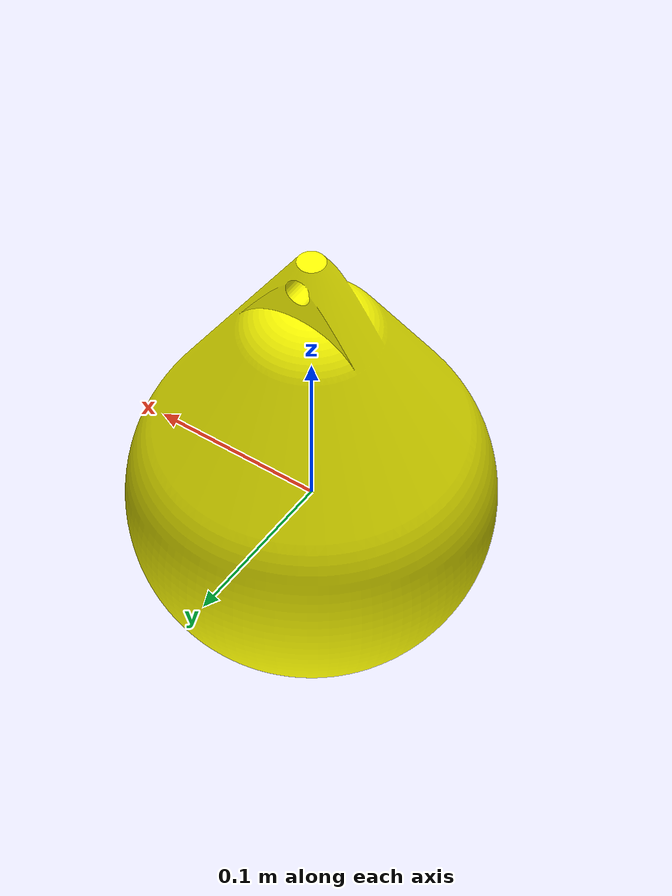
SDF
<?xml version='1.0'?>
<sdf version='1.6'>
  <model name='Yellow Ropehold Buoy'>
    <static>false</static>
    <plugin
        filename="gz-waves1-hydrodynamics-system"
        name="gz::sim::systems::Hydrodynamics">
    </plugin>
    <link name="base_link">
      <visual name="visual">
        <pose>0 0 0 0 0 0</pose>
        <geometry>
          <mesh>
            <uri>model://RedRopehold/meshes/RedRopehold.dae</uri>
            <scale>0.001 0.001 0.001</scale>
          </mesh>
        </geometry>
        <material>
          <ambient>0.9 0.9 0 1</ambient>
          <diffuse>1 1 0 1</diffuse>
          <specular>0.3 0.3 0.2 1</specular>
          <emissive>0.15 0.15 0 1</emissive>
        </material>
      </visual>
      <collision name="collision">
        <pose>0 0 0 0 0 0</pose>
        <geometry>
          <sphere>
            <radius>0.25</radius>
          </sphere>
        </geometry>
      </collision>
      <inertial>
        <pose>0 0 0 0 0 0</pose>
        <mass>20</mass>
        <inertia>
          <ixx>0.1636</ixx>
          <ixy>0.0</ixy>
          <ixz>0.0</ixz>
          <iyy>0.1636</iyy>
          <iyz>0.0</iyz>
          <izz>0.1636</izz>
        </inertia>
      </inertial>
    </link>
  </model>
</sdf>
